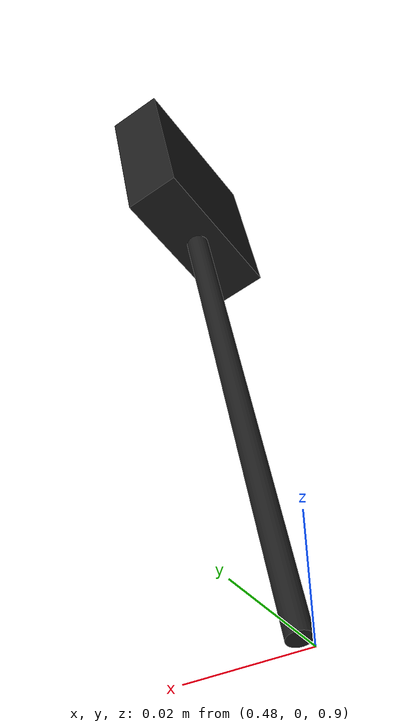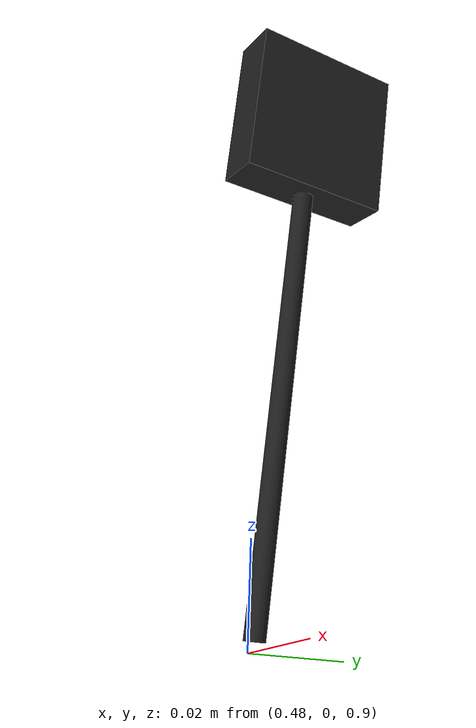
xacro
<?xml version="1.0"?>
<robot xmlns:xacro="http://www.ros.org/wiki/xacro" name="camera_only">

    <!-- Base Link (world에 고정) -->
    <link name="world"/>

    <joint name="world_fixed" type="fixed">
        <parent link="world"/>
        <child link="base_link"/>
        <origin xyz="0 0 0" rpy="0 0 0"/>
    </joint>

    <link name="base_link"/>

    <!-- Camera Link -->
    <joint name="camera_joint" type="fixed">
        <parent link="base_link"/>
        <child link="camera_link"/>
        <!-- 카메라 위치 (높이 1m, 앞으로 0.5m) -->
        <origin xyz="0.5 0 1.0" rpy="0 0.18 0"/>
    </joint>

    <link name="camera_link">
        <visual>
            <geometry>
                <box size="0.010 0.03 0.03"/>
            </geometry>
            <material name="black"/>
        </visual>
        <visual>
            <origin xyz="0 0 -0.05"/>
            <geometry>
                <cylinder radius="0.002" length="0.1"/>
            </geometry>
            <material name="black"/>
        </visual>
    </link>

    <!-- Camera Optical Frame -->
    <joint name="camera_optical_joint" type="fixed">
        <parent link="camera_link"/>
        <child link="camera_link_optical"/>
        <origin xyz="0 0 0" rpy="${-pi/2} 0 ${-pi/2}"/>
    </joint>

    <link name="camera_link_optical"/>

    <!-- Gazebo Camera Sensor -->
    <gazebo reference="camera_link">
        <material>Gazebo/Black</material>
        <sensor name="camera" type="camera">
            <pose>0 0 0 0 0 0</pose>
            <visualize>true</visualize>
            <update_rate>30</update_rate>
            <camera>
                <horizontal_fov>1.089</horizontal_fov>
                <image>
                    <format>R8G8B8</format>
                    <width>640</width>
                    <height>480</height>
                </image>
                <clip>
                    <near>0.05</near>
                    <far>8.0</far>
                </clip>
            </camera>
            <plugin name="camera_controller" filename="libgazebo_ros_camera.so">
                <ros>
                    <namespace>/camera</namespace>
                </ros>
                <frame_name>camera_link_optical</frame_name>
                <min_depth>0.1</min_depth>
                <max_depth>100.0</max_depth>
            </plugin>
        </sensor>
    </gazebo>

</robot>
